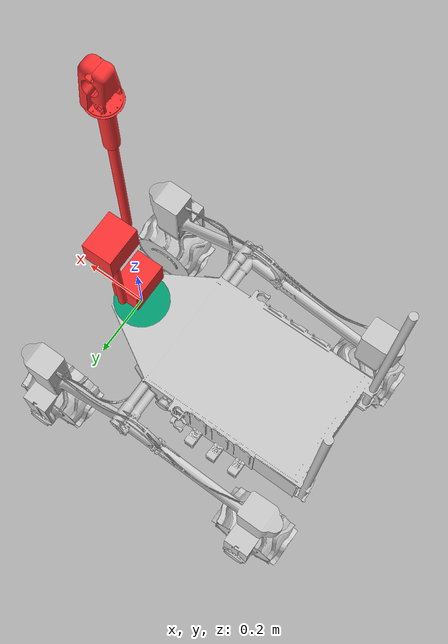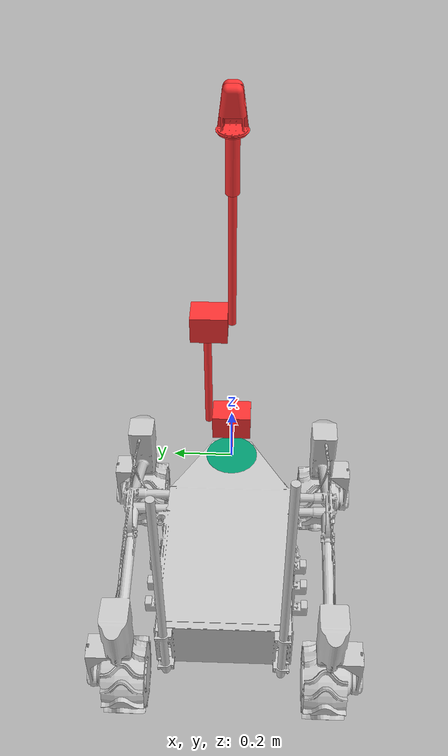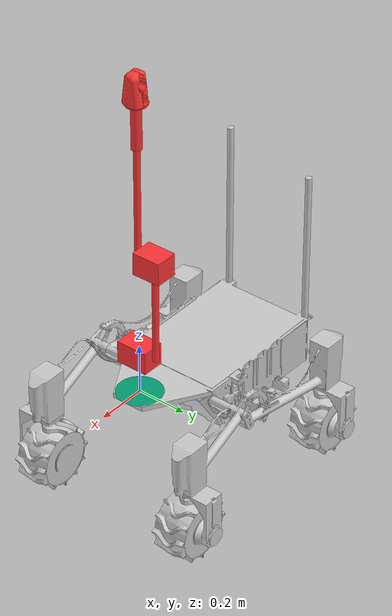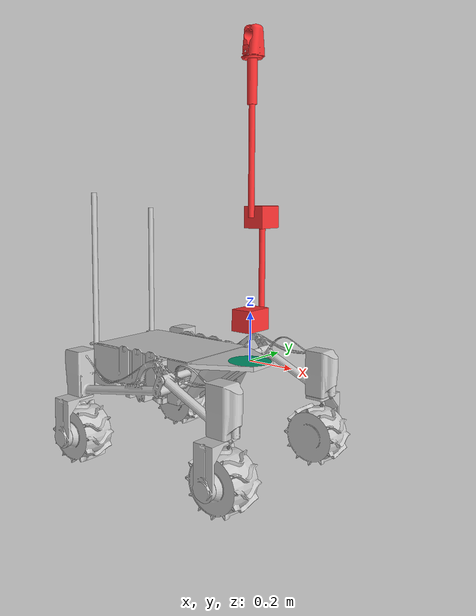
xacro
<?xml version="1.0"?>
<robot xmlns:xacro="http://www.ros.org/wiki/xacro" name="arm">
    <xacro:arg name="initial_positions_file" default="$(find kalman_arm_moveit_config)/config/initial_positions.yaml" />
    <link name="world" />
    <link name="flange" />
    <joint name="fix_flange" type="fixed">
        <parent link="world" />
        <child link="flange" />
    </joint>

    <xacro:include filename="$(find kalman_arm_moveit_config)/urdf/arm_description.urdf.xacro"/>

    <xacro:arm_description />

    <material name="red">
        <color rgba="1 0.2 0.2 1" />
    </material>

    <link name="base_link" />
    <joint name="fix_base" type="fixed">
        <parent link="arm_link" />
        <child link="base_link" />
        <origin rpy="0 0 0" xyz="-0.18 0 0"/>
    </joint>

    <xacro:include filename="$(find kalman_description)/urdf/sim_model.urdf.xacro" />

    <xacro:include filename="$(find kalman_arm_moveit_config)/ros2_control/arm.ros2_control.xacro" />
    <xacro:arm_ros2_control name="kalman_arm" />

</robot>

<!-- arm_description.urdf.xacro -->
<robot xmlns:xacro="http://www.ros.org/wiki/xacro" name="arm">

    <xacro:macro name="arm_description">
    <xacro:property name="link_2_length" value="0.41"/>
    <xacro:property name="link_4_length" value="0.44"/>
    <xacro:property name="link_5_length" value="0.18"/>
    <xacro:property name="gripper_size" value="0.20"/>

    <link name="arm_link">
        <visual>
            <geometry>
                <cylinder length="0" radius="0.089"/>
            </geometry>
            <origin rpy="0 0 0" xyz="0 0 0.0"/>
        </visual>
        <collision>
            <geometry>
                <cylinder length="0" radius="0.089"/>
            </geometry>
            <origin rpy="0 0 0" xyz="0 0 0.0"/>
        </collision>
        <inertial>
            <mass value="0.1"/>
            <inertia ixx="0.03" iyy="0.03" izz="0.03" ixy="0.0" ixz="0.0" iyz="0.0"/>
        </inertial>
    </link>

    <link name="arm_link_1">
        <visual>
            <geometry>
                <box size="0.1275 0.089 0.089"/>
            </geometry>
            <origin rpy="0 0 0" xyz="0.0 0 0"/>
            <material name="red"/>
        </visual>
        <collision>
            <geometry>
                <box size="0.1275 0.089 0.089"/>
            </geometry>
            <origin rpy="0 0 0" xyz="0.0 0 0"/>
        </collision>
        <inertial>
            <mass value="0.1"/>
            <inertia ixx="0.03" iyy="0.03" izz="0.03" ixy="0.0" ixz="0.0" iyz="0.0"/>
        </inertial>
    </link>

    <joint name="joint_1" type="revolute">
        <axis xyz="0 0 1"/>
        <limit effort="1000.0" lower="-6.2815926" upper="6.2815926" velocity="0.5"/>
        <parent link="arm_link"/>
        <child link="arm_link_1"/>
        <origin rpy="0 0 1.570796" xyz="0 0 0.172"/>
    </joint>

    <link name="arm_link_2">
        <visual>
            <geometry>
                <cylinder length="${link_2_length}" radius="0.0125"/>
            </geometry>
            <origin rpy="0 0 0" xyz="0.076250 0 ${link_2_length/2}"/>
            <material name="red"/>
        </visual>
        <collision>
            <geometry>
                <cylinder length="${link_2_length}" radius="0.0125"/>
            </geometry>
            <origin rpy="0 0 0" xyz="0.076250 0 ${link_2_length/2}"/>
        </collision>
        <inertial>
            <mass value="0.1"/>
            <inertia ixx="0.03" iyy="0.03" izz="0.03" ixy="0.0" ixz="0.0" iyz="0.0"/>
        </inertial>
    </link>

    <joint name="joint_2" type="revolute">
        <axis xyz="1 0 0"/>
        <limit effort="1000.0" lower="-3.1415926" upper="3.1415926" velocity="0.5"/>
        <parent link="arm_link_1"/>
        <child link="arm_link_2"/>
        <origin xyz="0 0 0"/>
    </joint>

    <link name="arm_link_3">
        <visual>
            <geometry>
                <box size="0.115 0.089 0.089"/>
            </geometry>
            <origin rpy="0 0 0" xyz="0.07 0 0"/>
            <material name="red"/>
        </visual>
        <collision>
            <geometry>
                <box size="0.115 0.089 0.089"/>
            </geometry>
            <origin rpy="0 0 0" xyz="0.07 0 0"/>
        </collision>
        <inertial>
            <mass value="0.1"/>
            <inertia ixx="0.03" iyy="0.03" izz="0.03" ixy="0.0" ixz="0.0" iyz="0.0"/>
        </inertial>

    </link>
    <joint name="joint_3" type="revolute">
        <axis xyz="1 0 0"/>
        <limit effort="1000.0" lower="-2.88" upper="2.88" velocity="0.5"/>
        <parent link="arm_link_2"/>
        <child link="arm_link_3"/>
        <origin xyz="0 0 ${link_2_length}"/>
    </joint>

    <link name="arm_link_4">
        <visual>
            <geometry>
                <cylinder length="${link_4_length}" radius="0.0125"/>
            </geometry>
            <origin rpy="0 0 0" xyz="0 0 ${link_4_length/2}"/>
            <material name="red"/>
        </visual>
        <collision>
            <geometry>
                <cylinder length="${link_4_length}" radius="0.0125"/>
            </geometry>
            <origin rpy="0 0 0" xyz="0 0 ${link_4_length/2}"/>
        </collision>
        <inertial>
            <mass value="0.1"/>
            <inertia ixx="0.03" iyy="0.03" izz="0.03" ixy="0.0" ixz="0.0" iyz="0.0"/>
        </inertial>
    </link>

    <joint name="joint_4" type="revolute">
        <axis xyz="0 0 1"/>
        <limit effort="1000.0" lower="-6.4" upper="6.4" velocity="0.5"/>
        <parent link="arm_link_3"/>
        <child link="arm_link_4"/>
    </joint>

    <link name="arm_link_5">
        <visual>
            <geometry>
                <cylinder length="${link_5_length}" radius="0.02"/>
            </geometry>
            <origin rpy="0 0 0" xyz="0 0 0"/>
            <material name="red"/>
        </visual>
        <collision>
            <geometry>
                <cylinder length="${link_5_length}" radius="0.02"/>
            </geometry>
            <origin rpy="0 0 0" xyz="0 0 0"/>
        </collision>
        <inertial>
            <mass value="0.1"/>
            <inertia ixx="0.03" iyy="0.03" izz="0.03" ixy="0.0" ixz="0.0" iyz="0.0"/>
        </inertial>
    </link>

    <joint name="joint_5" type="revolute">
        <axis xyz="1 0 0"/>
        <!-- 100 stopni -->
        <limit effort="1000.0" lower="-1.75" upper="1.75" velocity="0.5"/>
        <parent link="arm_link_5"/>
        <child link="link5_ext"/>
        <origin rpy="0 0 0" xyz="0 0 ${link_5_length/2}"/>
    </joint>

    <link name="link5_ext">
        <visual>
            <geometry>
                <cylinder length="0.001" radius="0.001"/>
            </geometry>
            <origin rpy="0 0 0" xyz="0 0 0"/>
            <material name="red"/>
        </visual>
        <collision>
            <geometry>
                <cylinder length="0.001" radius="0.001"/>
            </geometry>
            <origin rpy="0 0 0" xyz="0 0 0"/>
        </collision>
        <inertial>
            <mass value="0.1"/>
            <inertia ixx="0.03" iyy="0.03" izz="0.03" ixy="0.0" ixz="0.0" iyz="0.0"/>
        </inertial>
    </link>

    <link name="arm_link_6">
        <visual>
            <geometry>
                <cylinder length="0.001" radius="0.0445"/>
            </geometry>
            <origin rpy="0 0 0" xyz="0 0 -0.0"/>
            <material name="red"/>
        </visual>
        <collision>
            <geometry>
                <cylinder length="0.01" radius="0.0445"/>
            </geometry>
            <origin rpy="0 0 0" xyz="0 0 -0.0"/>
        </collision>
        <inertial>
            <mass value="0.1"/>
            <inertia ixx="0.03" iyy="0.03" izz="0.03" ixy="0.0" ixz="0.0" iyz="0.0"/>
        </inertial>
    </link>

    <link name="link6_ext">

    </link>

    <link name="ee">
    </link>

    <link name="link6_to_gripper">

    </link>
    <joint name="joint_5_fix" type="fixed">
        <parent link="arm_link_4"/>
        <child link="arm_link_5"/>
        <origin rpy="0 0 0" xyz="0 0 ${link_4_length + link_5_length/2.0}"/>
    </joint>

    <joint name="joint_6_fix" type="fixed">
        <parent link="arm_link_6"/>
        <child link="link6_ext"/>
        <origin rpy="-1.57 -1.57 0" xyz="0 0 0"/>

    </joint>

    <joint name="joint_6" type="revolute">
        <axis xyz="0 0 1"/>
        <limit effort="1000.0" lower="-3.4032" upper="3.4032" velocity="0.75"/>
        <parent link="link5_ext"/>
        <child link="arm_link_6"/>
        <origin rpy="0 0 0" xyz="0.0 0.0 0.0"/>
    </joint>

    <joint name="joint_6_to_gripper" type="fixed" >
        <parent link="link6_ext"/>
        <child link="link6_to_gripper"/>
        <origin rpy="1.57 0 0" xyz="0 0 0"/>
    </joint>

    <link name="gripper_fixed">
        <visual>
            <geometry>
                <mesh filename="package://kalman_arm_moveit_config/meshes/gripper/gripper_bottom.stl" scale="0.001 0.001 0.001"/>
            </geometry>
            <origin rpy="0 0 0" xyz="-0.04 -0.04 -0.12"/>
            <material name="red"/>
        </visual>
        <collision>
            <geometry>
                <mesh filename="package://kalman_arm_moveit_config/meshes/gripper/gripper_bottom.stl" scale="0.001 0.001 0.001"/>
            </geometry>
            <origin rpy="0 0 0" xyz="-0.04 -0.04 -0.12"/>
        </collision>
      <inertial>
            <mass value="0.1" />
            <inertia ixx="0.03" iyy="0.03" izz="0.03" ixy="0.0" ixz="0.0" iyz="0.0" />
        </inertial>
    </link>

    <joint name="gripper_fixed_joint" type="fixed">
        <parent link="link6_to_gripper"/>
        <child link="gripper_fixed"/>
        <origin rpy="0 4.71238898 0" xyz="0 0 0"/>
    </joint>
    <joint name="ee_fixed_joint" type="fixed">
        <parent link="link6_ext"/>
        <child link="ee"/>
        <origin rpy="0 0 0" xyz="${gripper_size} 0 0"/>
    </joint>

    <link name="gripper_moving">
        <visual>
            <geometry>
                <mesh filename="package://kalman_arm_moveit_config/meshes/gripper/gripper_top.stl" scale="0.001 0.001 0.001"/>
            </geometry>
            <material name="red"/>
            <origin rpy="0 0 0" xyz="-0.014 -0.12 -0.035"/>
        </visual>
        <collision>
            <geometry>
                <mesh filename="package://kalman_arm_moveit_config/meshes/gripper/gripper_top.stl" scale="0.001 0.001 0.001"/>
            </geometry>
            <origin rpy="0 0 0" xyz="-0.014 -0.12 -0.035"/>
        </collision>
        <inertial>
            <mass value="0.1" />
            <inertia ixx="0.03" iyy="0.03" izz="0.03" ixy="0.0" ixz="0.0" iyz="0.0" />
        </inertial>
    </link>

    <joint name="gripper_moving_joint" type="revolute">
        <parent link="link6_to_gripper"/>
        <child link="gripper_moving"/>
        <axis xyz="0 0 1"/>
        <limit effort="1000.0" lower="-0.1" upper="1.57" velocity="0.5"/>
        <origin rpy="0 0 1.57079633" xyz="0.0 0.014 0"/>
    </joint>

    <joint name="fix" type="fixed">
        <parent link="flange"/>
        <child link="arm_link"/>
        <origin rpy="0 0 0"/>
    </joint>

    <transmission name="trans_joint_1">
        <type>transmission_interface/SimpleTransmission</type>
        <joint name="joint_1">
            <hardwareInterface>hardware_interface/PositionJointInterface</hardwareInterface>
        </joint>
        <actuator name="joint_1_motor">
            <hardwareInterface>hardware_interface/PositionJointInterface</hardwareInterface>
            <mechanicalReduction>1</mechanicalReduction>
        </actuator>
    </transmission>

    <transmission name="trans_joint_2">
        <type>transmission_interface/SimpleTransmission</type>
        <joint name="joint_2">
            <hardwareInterface>hardware_interface/PositionJointInterface</hardwareInterface>
        </joint>
        <actuator name="joint_2_motor">
            <hardwareInterface>hardware_interface/PositionJointInterface</hardwareInterface>
            <mechanicalReduction>1</mechanicalReduction>
        </actuator>
    </transmission>

    <transmission name="trans_joint_3">
        <type>transmission_interface/SimpleTransmission</type>
        <joint name="joint_3">
            <hardwareInterface>hardware_interface/PositionJointInterface</hardwareInterface>
        </joint>
        <actuator name="joint_3_motor">
            <hardwareInterface>hardware_interface/PositionJointInterface</hardwareInterface>
            <mechanicalReduction>1</mechanicalReduction>
        </actuator>
    </transmission>

    <transmission name="trans_joint_4">
        <type>transmission_interface/SimpleTransmission</type>
        <joint name="joint_4">
            <hardwareInterface>hardware_interface/PositionJointInterface</hardwareInterface>
        </joint>
        <actuator name="joint_4_motor">
            <hardwareInterface>hardware_interface/PositionJointInterface</hardwareInterface>
            <mechanicalReduction>1</mechanicalReduction>
        </actuator>
    </transmission>

    <transmission name="trans_joint_5">
        <type>transmission_interface/SimpleTransmission</type>
        <joint name="joint_5">
            <hardwareInterface>hardware_interface/PositionJointInterface</hardwareInterface>
        </joint>
        <actuator name="joint_5_motor">
            <hardwareInterface>hardware_interface/PositionJointInterface</hardwareInterface>
            <mechanicalReduction>1</mechanicalReduction>
        </actuator>
    </transmission>

    <transmission name="trans_joint_6">
        <type>transmission_interface/SimpleTransmission</type>
        <joint name="joint_6">
            <hardwareInterface>hardware_interface/PositionJointInterface</hardwareInterface>
        </joint>
        <actuator name="joint_6_motor">
            <hardwareInterface>hardware_interface/PositionJointInterface</hardwareInterface>
            <mechanicalReduction>1</mechanicalReduction>
        </actuator>
    </transmission>

    <transmission name="trans_gripper">
        <type>transmission_interface/SimpleTransmission</type>
        <joint name="gripper_moving_joint">
            <hardwareInterface>hardware_interface/PositionJointInterface</hardwareInterface>
        </joint>
        <actuator name="gripper_motor">
            <hardwareInterface>hardware_interface/PositionJointInterface</hardwareInterface>
            <mechanicalReduction>1</mechanicalReduction>
        </actuator>
    </transmission>
    <gazebo>
        <plugin name="gazebo_ros_control" filename="libgazebo_ros_control.so">
            <robotNamespace>/</robotNamespace>
        </plugin>
    </gazebo>
    </xacro:macro>

</robot>

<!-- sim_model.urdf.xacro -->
<robot xmlns:xacro="http://www.ros.org/wiki/xacro" name="kalman">
    <xacro:include filename="$(find kalman_description)/urdf/cylinder_inertial.urdf.xacro" />

    <material name="white">
        <color rgba="0.8 0.8 0.8 1" />
    </material>

    <link name="body_link">
        <visual>
            <geometry>
                <mesh filename="package://kalman_description/stl/body.stl" />
            </geometry>
            <material name="white" />
        </visual>
    </link>
    <joint name="body_joint" type="fixed">
        <parent link="base_link" />
        <child link="body_link" />
    </joint>

    <xacro:macro name="suspension" params="y_side y_scale">
        <link name="suspension_${y_side}_link">
            <visual>
                <geometry>
                    <mesh filename="package://kalman_description/stl/suspension_r.stl" scale="1 ${y_scale} 1" />
                </geometry>
                <material name="white" />
            </visual>
            <xacro:cylinder_inertial radius="0.1" length="1" mass="1">
                <!-- This is not the correct intertia of the suspension,
                but it shuts up the warnings when supsension is dynamic. -->
                <origin rpy="1.5708 0 0" />
            </xacro:cylinder_inertial>
        </link>
        <joint name="suspension_${y_side}_joint" type="fixed">
            <!-- Suspension is static for now. -->
            <origin xyz="0.009 0 -0.06" />
            <axis xyz="0 1 0" />
            <parent link="body_link" />
            <child link="suspension_${y_side}_link" />
        </joint>
    </xacro:macro>
    <xacro:suspension y_side="r" y_scale="1" />
    <xacro:suspension y_side="l" y_scale="-1" />

    <xacro:macro name="swivel" params="x_side y_side y_scale xyz">
        <link name="swivel_${x_side}${y_side}_link">
            <visual>
                <geometry>
                    <mesh filename="package://kalman_description/stl/swivel_fr.stl" scale="1 ${y_scale} 1" />
                </geometry>
                <material name="white" />
            </visual>
            <xacro:cylinder_inertial radius="0.08" length="0.35" mass="2.25">
                <origin xyz="0 0 -0.25" />
            </xacro:cylinder_inertial>
        </link>
        <joint name="swivel_${x_side}${y_side}_joint" type="continuous">
            <origin xyz="${xyz}" />
            <axis xyz="0 0 1" />
            <parent link="suspension_${y_side}_link" />
            <child link="swivel_${x_side}${y_side}_link" />
        </joint>
    </xacro:macro>
    <xacro:swivel x_side="f" y_side="r" y_scale="1" xyz="0.295 -0.333 0.06" />
    <xacro:swivel x_side="f" y_side="l" y_scale="-1" xyz="0.295 0.333 0.06" />
    <xacro:swivel x_side="b" y_side="r" y_scale="1" xyz="-0.497 -0.333 0.06" />
    <xacro:swivel x_side="b" y_side="l" y_scale="-1" xyz="-0.497 0.333 0.06" />

    <xacro:macro name="wheel" params="x_side y_side y_scale xyz">
        <link name="wheel_${x_side}${y_side}_link">
            <visual>
                <geometry>
                    <mesh filename="package://kalman_description/stl/wheel_fr.stl" scale="1 ${y_scale} 1" />
                </geometry>
                <material name="white" />
            </visual>
            <collision>
                <origin rpy="1.5708 0 0" xyz="0 0 0"/>
                <geometry>
                    <cylinder radius="0.12" length="0.15" />
                </geometry>
            </collision>
            <xacro:cylinder_inertial radius="0.12" length="0.15" mass="3.3">
                <origin rpy="1.5708 0 0" xyz="0 0 0"/>
            </xacro:cylinder_inertial>
        </link>
        <joint name="wheel_${x_side}${y_side}_joint" type="continuous">
            <origin xyz="${xyz}" />
            <axis xyz="0 1 0" />
            <parent link="swivel_${x_side}${y_side}_link" />
            <child link="wheel_${x_side}${y_side}_link" />
        </joint>
    </xacro:macro>
    <xacro:wheel x_side="f" y_side="r" y_scale="1" xyz="0 0 -0.363" />
    <xacro:wheel x_side="f" y_side="l" y_scale="-1" xyz="0 0 -0.363" />
    <xacro:wheel x_side="b" y_side="r" y_scale="1" xyz="0 0 -0.363" />
    <xacro:wheel x_side="b" y_side="l" y_scale="-1" xyz="0 0 -0.363" />
</robot>
